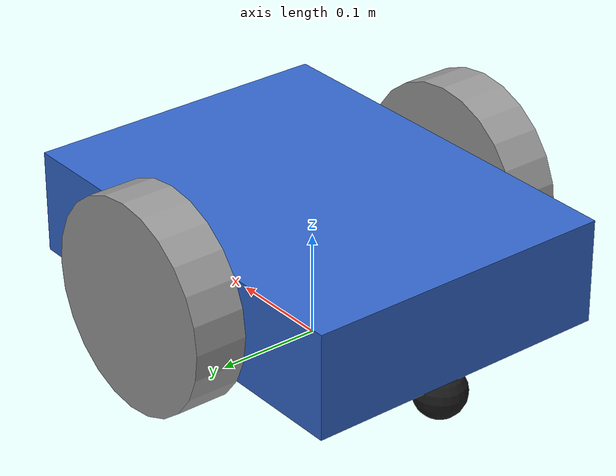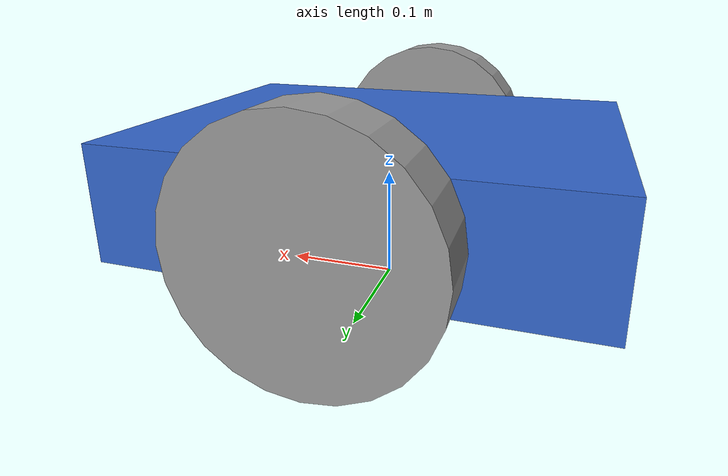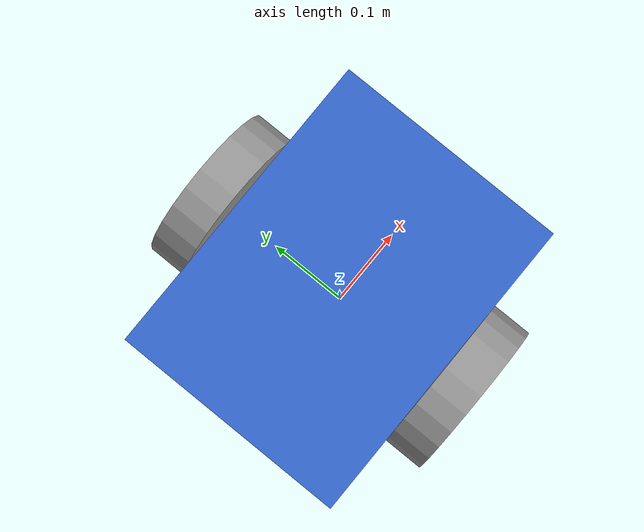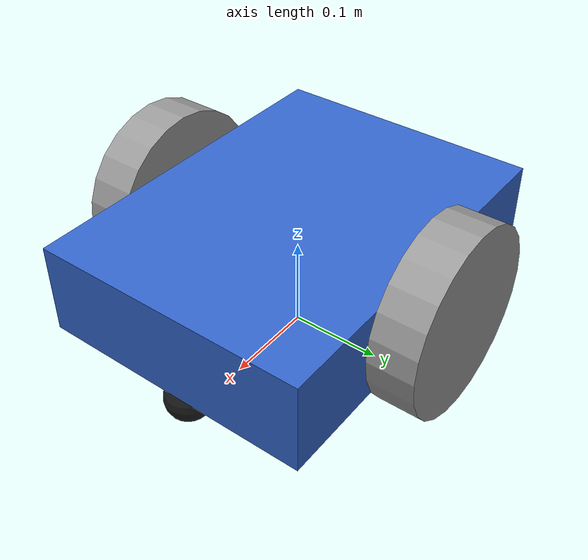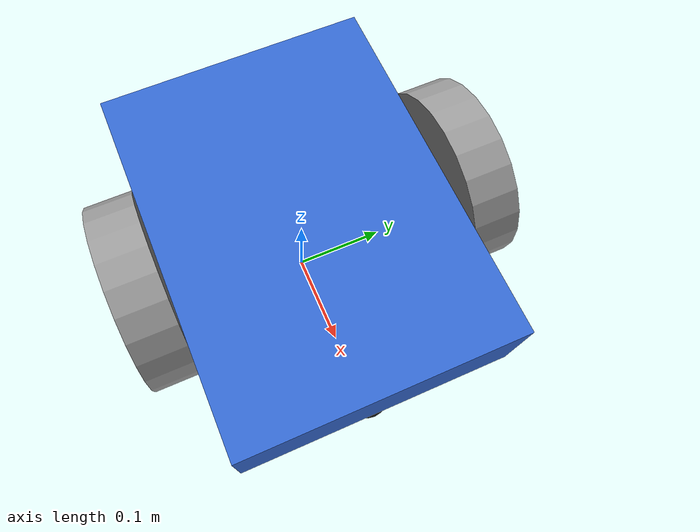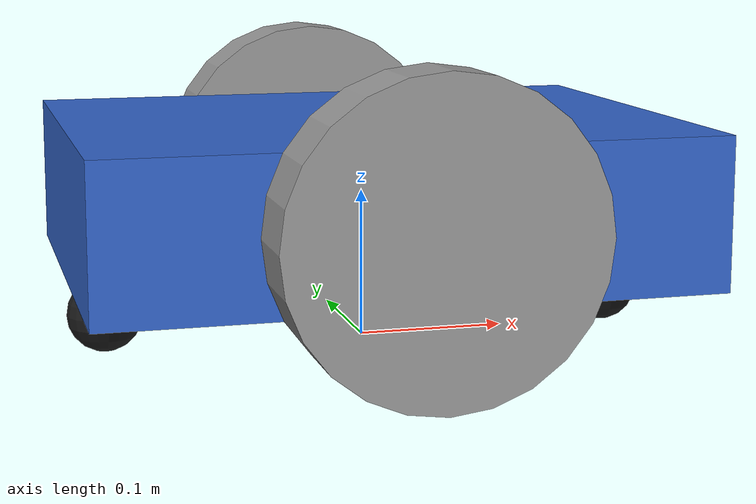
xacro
<?xml version="1.0"?>
<robot name="robot" xmlns:xacro="http://www.ros.org/wiki/xacro">

  <!-- ================================================================
       Properties
  ================================================================ -->
  <xacro:property name="PI" value="3.14159265359"/>

  <!-- chassis -->
  <xacro:property name="base_length" value="0.40"/>
  <xacro:property name="base_width"  value="0.30"/>
  <xacro:property name="base_height" value="0.10"/>
  <xacro:property name="base_mass"   value="1.50"/>

  <!-- drive wheels -->
  <xacro:property name="wheel_radius"     value="0.10"/>
  <xacro:property name="wheel_width"      value="0.05"/>
  <xacro:property name="wheel_mass"       value="0.25"/>
  <!-- distance between the two wheel centres -->
  <xacro:property name="wheel_separation" value="0.35"/>

  <!-- ball caster -->
  <xacro:property name="caster_radius" value="0.025"/>
  <!-- z-offset of caster centre in base_link frame so it touches the ground -->
  <xacro:property name="caster_z" value="${-(wheel_radius - caster_radius)}"/>

  <!-- ================================================================
       Materials
  ================================================================ -->
  <material name="blue">  <color rgba="0.20 0.40 0.80 1.0"/> </material>
  <material name="gray">  <color rgba="0.60 0.60 0.60 1.0"/> </material>
  <material name="black"> <color rgba="0.10 0.10 0.10 1.0"/> </material>

  <!-- ================================================================
       Inertia helpers
  ================================================================ -->
  <xacro:macro name="box_inertia" params="m l w h">
    <inertial>
      <mass value="${m}"/>
      <inertia ixx="${m*(w*w+h*h)/12}" iyy="${m*(l*l+h*h)/12}" izz="${m*(l*l+w*w)/12}"
               ixy="0" ixz="0" iyz="0"/>
    </inertial>
  </xacro:macro>

  <xacro:macro name="cylinder_inertia" params="m r h">
    <inertial>
      <mass value="${m}"/>
      <inertia ixx="${m*(3*r*r+h*h)/12}" iyy="${m*(3*r*r+h*h)/12}" izz="${m*r*r/2}"
               ixy="0" ixz="0" iyz="0"/>
    </inertial>
  </xacro:macro>

  <xacro:macro name="sphere_inertia" params="m r">
    <inertial>
      <mass value="${m}"/>
      <inertia ixx="${2*m*r*r/5}" iyy="${2*m*r*r/5}" izz="${2*m*r*r/5}"
               ixy="0" ixz="0" iyz="0"/>
    </inertial>
  </xacro:macro>

  <!-- ================================================================
       Base footprint  (ground reference frame)
  ================================================================ -->
  <link name="base_footprint"/>

  <joint name="base_joint" type="fixed">
    <parent link="base_footprint"/>
    <child  link="base_link"/>
    <!-- lift chassis so wheel bottoms sit on z=0 -->
    <origin xyz="0 0 ${wheel_radius}" rpy="0 0 0"/>
  </joint>

  <!-- ================================================================
       Chassis
  ================================================================ -->
  <link name="base_link">
    <visual>
      <origin xyz="0 0 0" rpy="0 0 0"/>
      <geometry><box size="${base_length} ${base_width} ${base_height}"/></geometry>
      <material name="blue"/>
    </visual>
    <collision>
      <origin xyz="0 0 0" rpy="0 0 0"/>
      <geometry><box size="${base_length} ${base_width} ${base_height}"/></geometry>
    </collision>
    <xacro:box_inertia m="${base_mass}" l="${base_length}" w="${base_width}" h="${base_height}"/>
  </link>

  <!-- ================================================================
       Drive wheel macro
  ================================================================ -->
  <xacro:macro name="drive_wheel" params="prefix y_reflect">

    <link name="${prefix}_wheel_link">
      <visual>
        <!-- rotate cylinder so its axis aligns with Y -->
        <origin xyz="0 0 0" rpy="${PI/2} 0 0"/>
        <geometry><cylinder radius="${wheel_radius}" length="${wheel_width}"/></geometry>
        <material name="gray"/>
      </visual>
      <collision>
        <origin xyz="0 0 0" rpy="${PI/2} 0 0"/>
        <geometry><cylinder radius="${wheel_radius}" length="${wheel_width}"/></geometry>
      </collision>
      <xacro:cylinder_inertia m="${wheel_mass}" r="${wheel_radius}" h="${wheel_width}"/>
    </link>

    <joint name="${prefix}_wheel_joint" type="continuous">
      <parent link="base_link"/>
      <child  link="${prefix}_wheel_link"/>
      <origin xyz="0 ${y_reflect * wheel_separation / 2} 0" rpy="0 0 0"/>
      <axis xyz="0 1 0"/>
      <dynamics damping="0.01" friction="0.05"/>
    </joint>

    <gazebo reference="${prefix}_wheel_link">
      <mu1>1.0</mu1>
      <mu2>1.0</mu2>
      <kp>1e6</kp>
      <kd>1.0</kd>
    </gazebo>

  </xacro:macro>

  <xacro:drive_wheel prefix="left"  y_reflect=" 1"/>
  <xacro:drive_wheel prefix="right" y_reflect="-1"/>

  <!-- ================================================================
       Ball caster macro  (zero friction so it slides freely)
  ================================================================ -->
  <xacro:macro name="ball_caster" params="prefix x_pos">

    <link name="${prefix}_caster_link">
      <visual>
        <origin xyz="0 0 0" rpy="0 0 0"/>
        <geometry><sphere radius="${caster_radius}"/></geometry>
        <material name="black"/>
      </visual>
      <collision>
        <origin xyz="0 0 0" rpy="0 0 0"/>
        <geometry><sphere radius="${caster_radius}"/></geometry>
      </collision>
      <xacro:sphere_inertia m="0.05" r="${caster_radius}"/>
    </link>

    <joint name="${prefix}_caster_joint" type="fixed">
      <parent link="base_link"/>
      <child  link="${prefix}_caster_link"/>
      <origin xyz="${x_pos} 0 ${caster_z}" rpy="0 0 0"/>
    </joint>

    <gazebo reference="${prefix}_caster_link">
      <mu1>0.0</mu1>
      <mu2>0.0</mu2>
    </gazebo>

  </xacro:macro>

  <xacro:ball_caster prefix="front" x_pos=" ${base_length/2 - caster_radius}"/>
  <xacro:ball_caster prefix="back"  x_pos="${-(base_length/2 - caster_radius)}"/>

  <ros2_control name="GazeboSimSystem" type="system">
    <hardware>
      <plugin>gz_ros2_control/GazeboSimSystem</plugin>
    </hardware>

    <joint name="left_wheel_joint">
      <command_interface name="velocity">
        <param name="min">-10</param>
        <param name="max"> 10</param>
      </command_interface>
      <state_interface name="position"/>
      <state_interface name="velocity"/>
    </joint>

    <joint name="right_wheel_joint">
      <command_interface name="velocity">
        <param name="min">-10</param>
        <param name="max"> 10</param>
      </command_interface>
      <state_interface name="position"/>
      <state_interface name="velocity"/>
    </joint>
  </ros2_control>

  <gazebo>
    <plugin filename="gz_ros2_control-system"
            name="gz_ros2_control::GazeboSimROS2ControlPlugin">
      <parameters>$(find robot_description)/config/ros2_controllers.yaml</parameters>
    </plugin>
  </gazebo>

</robot>
